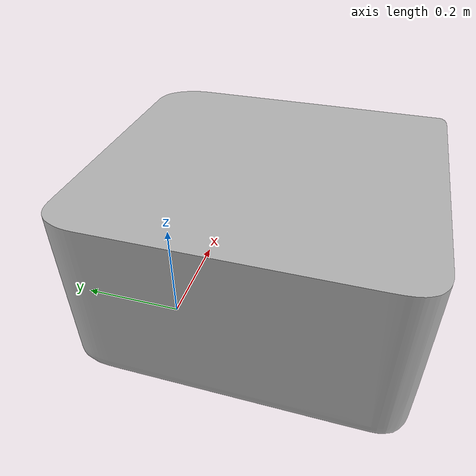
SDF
<?xml version='1.0' encoding='utf-8'?>
<sdf version="1.7">
  <model name="printer">
    <link name="base_link">
      <inertial>
        <mass>60.000000</mass>
        <pose>0.062079 0.373525 0.180242 0 0 0</pose>
        <inertia>
          <ixx>3.914253</ixx>
          <iyy>2.813965</iyy>
          <izz>3.902852</izz>
          <ixy>-0.034328</ixy>
          <ixz>-0.082623</ixz>
          <iyz>-0.016010</iyz>
        </inertia>
      </inertial>
      <visual name="visual">
        <geometry>
          <mesh>
            <uri>printer.gltf</uri>
          </mesh>
        </geometry>
      </visual>
      <collision name="collision_0">
        <surface>
          <friction>
            <ode>
              <mu>0.400</mu>
              <mu2>0.400</mu2>
            </ode>
          </friction>
        </surface>
        <geometry>
          <mesh>
            <uri>printer_collision_0.obj</uri>
          </mesh>
        </geometry>
      </collision>
      <collision name="collision_1">
        <surface>
          <friction>
            <ode>
              <mu>0.400</mu>
              <mu2>0.400</mu2>
            </ode>
          </friction>
        </surface>
        <geometry>
          <mesh>
            <uri>printer_collision_1.obj</uri>
          </mesh>
        </geometry>
      </collision>
      <collision name="collision_2">
        <surface>
          <friction>
            <ode>
              <mu>0.400</mu>
              <mu2>0.400</mu2>
            </ode>
          </friction>
        </surface>
        <geometry>
          <mesh>
            <uri>printer_collision_2.obj</uri>
          </mesh>
        </geometry>
      </collision>
      <collision name="collision_3">
        <surface>
          <friction>
            <ode>
              <mu>0.400</mu>
              <mu2>0.400</mu2>
            </ode>
          </friction>
        </surface>
        <geometry>
          <mesh>
            <uri>printer_collision_3.obj</uri>
          </mesh>
        </geometry>
      </collision>
      <collision name="collision_4">
        <surface>
          <friction>
            <ode>
              <mu>0.400</mu>
              <mu2>0.400</mu2>
            </ode>
          </friction>
        </surface>
        <geometry>
          <mesh>
            <uri>printer_collision_4.obj</uri>
          </mesh>
        </geometry>
      </collision>
      <collision name="collision_5">
        <surface>
          <friction>
            <ode>
              <mu>0.400</mu>
              <mu2>0.400</mu2>
            </ode>
          </friction>
        </surface>
        <geometry>
          <mesh>
            <uri>printer_collision_5.obj</uri>
          </mesh>
        </geometry>
      </collision>
      <collision name="collision_6">
        <surface>
          <friction>
            <ode>
              <mu>0.400</mu>
              <mu2>0.400</mu2>
            </ode>
          </friction>
        </surface>
        <geometry>
          <mesh>
            <uri>printer_collision_6.obj</uri>
          </mesh>
        </geometry>
      </collision>
      <collision name="collision_7">
        <surface>
          <friction>
            <ode>
              <mu>0.400</mu>
              <mu2>0.400</mu2>
            </ode>
          </friction>
        </surface>
        <geometry>
          <mesh>
            <uri>printer_collision_7.obj</uri>
          </mesh>
        </geometry>
      </collision>
      <collision name="collision_8">
        <surface>
          <friction>
            <ode>
              <mu>0.400</mu>
              <mu2>0.400</mu2>
            </ode>
          </friction>
        </surface>
        <geometry>
          <mesh>
            <uri>printer_collision_8.obj</uri>
          </mesh>
        </geometry>
      </collision>
      <collision name="collision_9">
        <surface>
          <friction>
            <ode>
              <mu>0.400</mu>
              <mu2>0.400</mu2>
            </ode>
          </friction>
        </surface>
        <geometry>
          <mesh>
            <uri>printer_collision_9.obj</uri>
          </mesh>
        </geometry>
      </collision>
      <collision name="collision_10">
        <surface>
          <friction>
            <ode>
              <mu>0.400</mu>
              <mu2>0.400</mu2>
            </ode>
          </friction>
        </surface>
        <geometry>
          <mesh>
            <uri>printer_collision_10.obj</uri>
          </mesh>
        </geometry>
      </collision>
      <collision name="collision_11">
        <surface>
          <friction>
            <ode>
              <mu>0.400</mu>
              <mu2>0.400</mu2>
            </ode>
          </friction>
        </surface>
        <geometry>
          <mesh>
            <uri>printer_collision_11.obj</uri>
          </mesh>
        </geometry>
      </collision>
      <collision name="collision_12">
        <surface>
          <friction>
            <ode>
              <mu>0.400</mu>
              <mu2>0.400</mu2>
            </ode>
          </friction>
        </surface>
        <geometry>
          <mesh>
            <uri>printer_collision_12.obj</uri>
          </mesh>
        </geometry>
      </collision>
      <collision name="collision_13">
        <surface>
          <friction>
            <ode>
              <mu>0.400</mu>
              <mu2>0.400</mu2>
            </ode>
          </friction>
        </surface>
        <geometry>
          <mesh>
            <uri>printer_collision_13.obj</uri>
          </mesh>
        </geometry>
      </collision>
      <collision name="collision_14">
        <surface>
          <friction>
            <ode>
              <mu>0.400</mu>
              <mu2>0.400</mu2>
            </ode>
          </friction>
        </surface>
        <geometry>
          <mesh>
            <uri>printer_collision_14.obj</uri>
          </mesh>
        </geometry>
      </collision>
      <collision name="collision_15">
        <surface>
          <friction>
            <ode>
              <mu>0.400</mu>
              <mu2>0.400</mu2>
            </ode>
          </friction>
        </surface>
        <geometry>
          <mesh>
            <uri>printer_collision_15.obj</uri>
          </mesh>
        </geometry>
      </collision>
      <collision name="collision_16">
        <surface>
          <friction>
            <ode>
              <mu>0.400</mu>
              <mu2>0.400</mu2>
            </ode>
          </friction>
        </surface>
        <geometry>
          <mesh>
            <uri>printer_collision_16.obj</uri>
          </mesh>
        </geometry>
      </collision>
      <collision name="collision_17">
        <surface>
          <friction>
            <ode>
              <mu>0.400</mu>
              <mu2>0.400</mu2>
            </ode>
          </friction>
        </surface>
        <geometry>
          <mesh>
            <uri>printer_collision_17.obj</uri>
          </mesh>
        </geometry>
      </collision>
      <collision name="collision_18">
        <surface>
          <friction>
            <ode>
              <mu>0.400</mu>
              <mu2>0.400</mu2>
            </ode>
          </friction>
        </surface>
        <geometry>
          <mesh>
            <uri>printer_collision_18.obj</uri>
          </mesh>
        </geometry>
      </collision>
      <collision name="collision_19">
        <surface>
          <friction>
            <ode>
              <mu>0.400</mu>
              <mu2>0.400</mu2>
            </ode>
          </friction>
        </surface>
        <geometry>
          <mesh>
            <uri>printer_collision_19.obj</uri>
          </mesh>
        </geometry>
      </collision>
      <collision name="collision_20">
        <surface>
          <friction>
            <ode>
              <mu>0.400</mu>
              <mu2>0.400</mu2>
            </ode>
          </friction>
        </surface>
        <geometry>
          <mesh>
            <uri>printer_collision_20.obj</uri>
          </mesh>
        </geometry>
      </collision>
    </link>
  </model>
</sdf>
